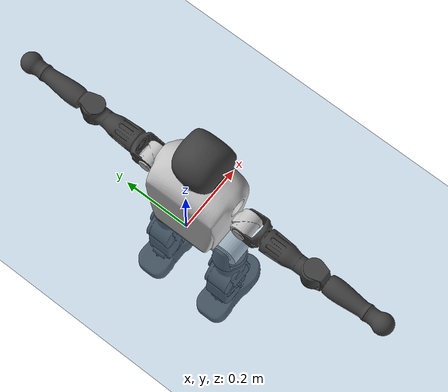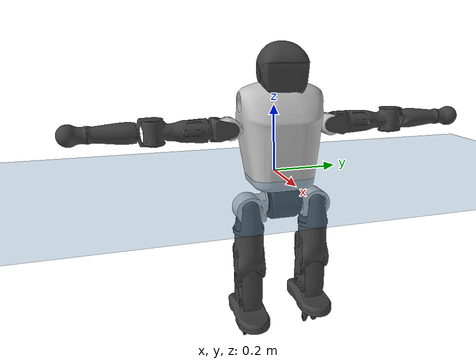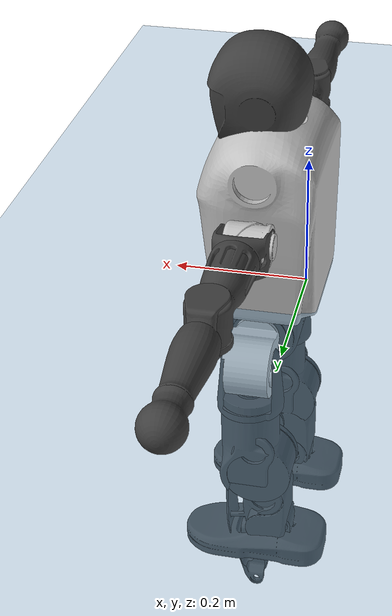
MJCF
<mujoco model="T1">
  <compiler angle="radian" assetdir="assets" balanceinertia="true" inertiafromgeom="false"/>

  <option timestep="0.005" density="1.2" viscosity="2e-05"/>

  <size nkey="1"/>

  <visual>
    <quality shadowsize="8192"/>
    <map shadowclip="0.5"/>
  </visual>

  <default>
    <default class="/">
      <joint armature="0.01" damping="0.01" frictionloss="0.1"/>
      <geom contype="0" conaffinity="0" group="1" solref="-1000 -80"/>
      <site size="0.01 0.005 0.005" group="5"/>
      <general forcelimited="true" biastype="affine" gainprm="25" biasprm="0 -25 -0.6"/>
      <default class="t1">
        <geom rgba="0.25 0.25 0.25 1"/>
        <default class="visual">
          <geom type="mesh" group="2"/>
        </default>
        <default class="collision">
          <geom group="3"/>
        </default>
        <default class="foot">
          <geom size="0.1115 0.05 0.015" type="box" condim="6" group="4" priority="1" solimp="0.015 1 0.015"/>
        </default>
        <default class="reward_collision_sphere">
          <geom group="5" rgba="1 0 0 1"/>
        </default>
      </default>
    </default>
  </default>

  <asset>
    <texture type="skybox" colorspace="auto" name="//unnamed_texture_0" builtin="gradient" rgb1="0.95 0.95 0.95" rgb2="0.95 0.95 0.95" width="100" height="600"/>
    <texture type="2d" colorspace="auto" name="texplane" builtin="checker" rgb1="0.345 0.575 0.748" rgb2="0.345 0.575 0.748" markrgb="1 1 1" width="512" height="512"/>
    <material name="MatPlane" class="/" texture="texplane" texuniform="true" texrepeat="2 2" specular="0.9"/>
    <mesh name="Trunk" class="/" file="Trunk.stl"/>
    <mesh name="H1" class="/" file="H1.stl"/>
    <mesh name="H2" class="/" file="H2.stl"/>
    <mesh name="AL1" class="/" file="AL1.stl"/>
    <mesh name="AL2" class="/" file="AL2.stl"/>
    <mesh name="AL3" class="/" file="AL3.stl"/>
    <mesh name="left_hand_link" class="/" file="left_hand_link.stl"/>
    <mesh name="AR1" class="/" file="AR1.stl"/>
    <mesh name="AR2" class="/" file="AR2.stl"/>
    <mesh name="AR3" class="/" file="AR3.stl"/>
    <mesh name="right_hand_link" class="/" file="right_hand_link.stl"/>
    <mesh name="Waist" class="/" file="Waist.stl"/>
    <mesh name="Hip_Pitch_Left" class="/" file="Hip_Pitch_Left.stl"/>
    <mesh name="Hip_Roll_Left" class="/" file="Hip_Roll_Left.stl"/>
    <mesh name="Hip_Yaw_Left" class="/" file="Hip_Yaw_Left.stl"/>
    <mesh name="Shank_Left" class="/" file="Shank_Left.stl"/>
    <mesh name="Ankle_Cross_Left" class="/" file="Ankle_Cross_Left.stl"/>
    <mesh name="left_foot_link" class="/" file="left_foot_link.stl"/>
    <mesh name="Hip_Pitch_Right" class="/" file="Hip_Pitch_Right.stl"/>
    <mesh name="Hip_Roll_Right" class="/" file="Hip_Roll_Right.stl"/>
    <mesh name="Hip_Yaw_Right" class="/" file="Hip_Yaw_Right.stl"/>
    <mesh name="Shank_Right" class="/" file="Shank_Right.stl"/>
    <mesh name="Ankle_Cross_Right" class="/" file="Ankle_Cross_Right.stl"/>
    <mesh name="right_foot_link" class="/" file="right_foot_link.stl"/>
  </asset>

  <worldbody>
    <geom name="floor" class="/" size="100 100 0.125" type="plane" group="0" material="MatPlane"/>
    <light name="toplight_shadow" class="/" pos="0 0 5" dir="0.0990148 0.0990148 -0.990148" type="directional" ambient="0.04 0.04 0.04" diffuse="0.55 0.55 0.55" specular="0.12 0.12 0.12"/>
    <light name="toplight_fill" class="/" pos="0 0 5" dir="0.0990148 0.0990148 -0.990148" type="directional" castshadow="false" ambient="0.04 0.04 0.04" diffuse="0.3 0.3 0.3" specular="0.08 0.08 0.08"/>
    <body name="trunk" childclass="t1" pos="-0.000454908 -0.000155746 -0.00077222" quat="1 -0.000697136 -0.000279357 -0.000272073">
      <inertial pos="0.0532279 -0.002905 0.0672449" quat="0.999899 0.00887835 -0.0110424 -0.00071826" mass="8.15829" diaginertia="0.0810519 0.0763056 0.00730205"/>
      <joint name="//unnamed_joint_0" type="free" armature="0" damping="0" frictionloss="0"/>
      <geom name="//unnamed_geom_1" class="visual" rgba="0.76 0.76 0.76 1" mesh="Trunk"/>
      <geom name="//unnamed_geom_2" class="collision" size="0.0654064 0.0872085 0.130813" pos="0.0582107 0 0.0788354" type="box"/>
      <geom name="//unnamed_geom_3" class="reward_collision_sphere" size="0.10029" pos="0.0582107 0 0.0656962"/>
      <geom name="//unnamed_geom_4" class="reward_collision_sphere" size="0.0130813" pos="0.0582107 0.0840747 0"/>
      <geom name="//unnamed_geom_5" class="reward_collision_sphere" size="0.0130813" pos="0.0582107 -0.0840747 0"/>
      <geom name="//unnamed_geom_6" class="reward_collision_sphere" size="0.0130813" pos="0.0582107 0.105835 0.118253"/>
      <geom name="//unnamed_geom_7" class="reward_collision_sphere" size="0.0130813" pos="0.0582107 -0.105835 0.118253"/>
      <site name="imu" pos="-0.0188292 0.00970622 0.0113748" size="0.00872085"/>
      <camera name="track" pos="0 -1.97823 0" quat="0.707107 0.707107 0 0" mode="trackcom"/>
      <camera name="ego_camera" pos="0.118362 0 0.275924" quat="-0.5 -0.5 0.5 0.5"/>
      <body name="H1" pos="0.0573964 -0.0014171 0.159379" quat="1 -0.000443857 0.000132973 -0.000529942">
        <inertial pos="0.000535538 -0.00374222 0.0353346" quat="0.766331 -0.0236213 0.00872596 0.641953" mass="0.285668" diaginertia="0.000200037 0.000210573 1.78574e-05"/>
        <joint name="AAHead_yaw" pos="0 0 0" axis="0.00116603 0.00258719 0.999996" range="-1.52868 1.58591" armature="0.00984778" damping="0.0194226" frictionloss="0.0756701"/>
        <geom name="//unnamed_geom_8" class="visual" mesh="H1"/>
        <body name="H2" pos="-0.00111503 0.00246981 0.0383525" quat="1 1.73334e-05 -0.000267132 4.73294e-06">
          <inertial pos="0.00345012 -0.00169408 0.0652772" quat="0.98713 0.109745 -0.0867336 -0.0775099" mass="0.399908" diaginertia="0.00180564 0.00176531 0.0002058"/>
          <joint name="Head_pitch" pos="0 0 0" axis="-0.00784811 -0.999913 0.010644" stiffness="0.000106312" range="-1.22998 0.358233" armature="0.00939077" damping="0.00178518" frictionloss="0.0888044"/>
          <geom name="//unnamed_geom_9" class="visual" mesh="H2"/>
          <geom name="//unnamed_geom_10" class="collision" size="0.0697668" pos="0.00970178 0 0.0722658"/>
          <geom name="//unnamed_geom_11" class="reward_collision_sphere" size="0.0784876" pos="0.0194036 0 0.0656962"/>
        </body>
      </body>
      <body name="AL1" pos="0.0563269 0.106183 0.145395" quat="0.999999 0.000750287 5.00745e-05 -0.000706515">
        <inertial pos="0.00165216 0.0463824 -0.00260553" quat="0.50481 0.499766 -0.506409 0.488826" mass="0.337051" diaginertia="0.00113097 0.00121958 3.64606e-05"/>
        <joint name="Left_Shoulder_Pitch" pos="0 0 0" axis="0.011274 0.999913 -0.00679395" stiffness="0.0140869" range="-3.26575 1.2071" armature="0.00973869" damping="0.0205574" frictionloss="0.0890505"/>
        <geom name="//unnamed_geom_12" class="visual" rgba="0.76 0.76 0.76 1" mesh="AL1"/>
        <body name="AL2" pos="0.00369885 0.044399 0.00282819" quat="0.999998 -0.000553679 -0.000373806 0.00176477">
          <inertial pos="0.0064735 0.0382903 0.000456634" quat="0.480134 0.518421 -0.489723 0.510766" mass="0.0970207" diaginertia="0.000328564 0.000313115 2.0251e-05"/>
          <joint name="Left_Shoulder_Roll" pos="0 0 0" axis="-0.999761 -0.018452 -0.0116945" range="-1.591 1.71527" armature="0.0094844" damping="0.0237893" frictionloss="0.0764194"/>
          <geom name="//unnamed_geom_13" class="visual" mesh="AL2"/>
          <body name="AL3" pos="0.0026636 0.0578104 0.00230291" quat="0.999998 0.00131955 0.000760141 -0.00154201">
            <inertial pos="0.00153182 0.0853186 0.000204148" quat="0.706924 0.707267 0.00442317 -0.00354185" mass="0.654889" diaginertia="0.0105883 0.011773 7.18253e-05"/>
            <joint name="Left_Elbow_Pitch" pos="0 0 0" axis="0.000815451 -0.999991 0.00409135" stiffness="0.0204772" range="-2.31213 2.24907" armature="0.00863777" damping="0.01133" frictionloss="0.0844974"/>
            <geom name="//unnamed_geom_14" class="visual" mesh="AL3"/>
            <geom name="//unnamed_geom_15" class="collision" size="0.0261625 0.0654064" pos="0 0.0494557 0" quat="0.707105 0.707108 0 0" type="cylinder"/>
            <geom name="//unnamed_geom_16" class="reward_collision_sphere" size="0.0313951"/>
            <body name="left_hand_link" pos="0.00147906 0.142047 0.00116588" quat="0.999999 0.000734138 -0.00102029 0.00052179">
              <inertial pos="-0.000690473 0.106528 0.00272585" quat="0.710897 0.703233 0.00904571 -0.00256128" mass="0.226829" diaginertia="0.00754343 0.00809171 2.70779e-05"/>
              <joint name="Left_Elbow_Yaw" pos="0 0 0" axis="0.00381576 -0.00557157 0.999977" range="-2.43445 -0.01912" armature="0.00858668" damping="0.00743782" frictionloss="0.0708253"/>
              <geom name="//unnamed_geom_17" class="visual" mesh="left_hand_link"/>
              <geom name="//unnamed_geom_18" class="collision" size="0.0261625 0.0763074" pos="0 0.128585 0" quat="0.707105 0.707108 0 0" type="cylinder"/>
              <geom name="//unnamed_geom_19" class="reward_collision_sphere" size="0.0436042"/>
              <geom name="//unnamed_geom_20" class="reward_collision_sphere" size="0.030523" pos="0 0.108803 0"/>
              <geom name="//unnamed_geom_21" class="reward_collision_sphere" size="0.030523" pos="0 0.21266 0"/>
            </body>
          </body>
        </body>
      </body>
      <body name="AR1" pos="0.0573227 -0.104892 0.145922" quat="0.999999 -0.000807538 0.00135192 -0.00069836">
        <inertial pos="-0.000847421 -0.0468956 0.00237107" quat="0.50193 0.495964 -0.503158 0.498917" mass="0.353217" diaginertia="0.00115671 0.00116309 3.52056e-05"/>
        <joint name="Right_Shoulder_Pitch" pos="0 0 0" axis="0.00895837 -0.999955 0.00322836" range="-1.28346 3.26152" armature="0.00871165" damping="0" frictionloss="0.089825"/>
        <geom name="//unnamed_geom_22" class="visual" rgba="0.76 0.76 0.76 1" mesh="AR1"/>
        <body name="AR2" pos="0.00262834 -0.0470006 -0.000173764" quat="1 -0.000660393 -0.000322529 -0.00050152">
          <inertial pos="0.0024112 -0.0350756 -5.1804e-05" quat="0.51055 0.484156 -0.516559 0.487953" mass="0.11212" diaginertia="0.000364959 0.000353655 2.15229e-05"/>
          <joint name="Right_Shoulder_Roll" pos="0 0 0" axis="-0.999985 -0.00544335 9.67331e-05" range="-1.70842 1.62573" armature="0.00853223" damping="0.0201143" frictionloss="0.0975082"/>
          <geom name="//unnamed_geom_23" class="visual" mesh="AR2"/>
          <body name="AR3" pos="-0.00165948 -0.063697 -0.00187826" quat="1 -0.000203266 -5.71758e-05 0.000761667">
            <inertial pos="2.45959e-06 -0.0871117 -0.00181869" quat="0.717692 0.696171 0.0160502 0.0025043" mass="0.656413" diaginertia="0.0107412 0.012107 7.2856e-05"/>
            <joint name="Right_Elbow_Pitch" pos="0 0 0" axis="5.84844e-05 1 -0.000243297" range="-2.26466 2.27647" armature="0.00766864" damping="0.0106847" frictionloss="0.0741888"/>
            <geom name="//unnamed_geom_24" class="visual" mesh="AR3"/>
            <geom name="//unnamed_geom_25" class="collision" size="0.0261625 0.0654064" pos="0 -0.0494557 0" quat="0.707105 0.707108 0 0" type="cylinder"/>
            <geom name="//unnamed_geom_26" class="reward_collision_sphere" size="0.0313951"/>
            <body name="right_hand_link" pos="0.00188512 -0.147606 0.00266599" quat="1 -0.000569237 -0.000111346 -0.00063142">
              <inertial pos="0.00203867 -0.107938 -0.00211457" quat="0.713972 0.700171 -0.00187621 0.00068994" mass="0.232644" diaginertia="0.00725184 0.00796898 2.74761e-05"/>
              <joint name="Right_Elbow_Yaw" pos="0 0 0" axis="-0.0114491 0.000260515 0.999934" range="0.0160898 2.48572" armature="0.00697502" damping="0.00550831" frictionloss="0.0890133"/>
              <geom name="//unnamed_geom_27" class="visual" mesh="right_hand_link"/>
              <geom name="//unnamed_geom_28" class="collision" size="0.0261625 0.0763074" pos="0 -0.128585 0" quat="0.707105 0.707108 0 0" type="cylinder"/>
              <geom name="//unnamed_geom_29" class="reward_collision_sphere" size="0.0436042"/>
              <geom name="//unnamed_geom_30" class="reward_collision_sphere" size="0.030523" pos="0 -0.108803 0"/>
              <geom name="//unnamed_geom_31" class="reward_collision_sphere" size="0.030523" pos="0 -0.21266 0"/>
            </body>
          </body>
        </body>
      </body>
      <body name="Waist" pos="0.0620769 0.00314778 -0.0749684" quat="1 0.000255942 0.000628775 0.000208369">
        <inertial pos="-0.000912082 -0.00137553 0.00366851" quat="0.982957 -0.00307482 -0.183427 0.0118971" mass="1.7415" diaginertia="0.00464591 0.00525019 0.000602835"/>
        <joint name="Waist" pos="0 0 0" axis="0.0037321 -0.00951872 0.999948" range="-1.64793 1.61044" armature="0.00930282" damping="0.0242215" frictionloss="0.0806259"/>
        <geom name="//unnamed_geom_32" class="visual" mesh="Waist"/>
        <body name="Hip_Pitch_Left" pos="0.00283713 0.103023 0.00150748" quat="0.999999 -0.00138148 -0.000543463 -0.000186085">
          <inertial pos="0.000235711 -0.0108105 -0.0115373" quat="0.974858 0.222437 0.0121008 0.0051741" mass="0.650104" diaginertia="0.00152619 0.00129538 0.000150238"/>
          <joint name="Left_Hip_Pitch" pos="0 0 0" axis="0.0039119 0.999761 -0.0214868" stiffness="0.00205646" range="-1.775 1.58458" armature="0.00888038" damping="0.0257619" frictionloss="0.0877478"/>
          <geom name="//unnamed_geom_33" class="visual" rgba="0.76 0.76 0.76 1" mesh="Hip_Pitch_Left"/>
          <body name="Hip_Roll_Left" pos="0.00177006 -0.000221862 -0.0136724" quat="1 0.000883052 -0.000170428 -0.000403641">
            <inertial pos="0.00399844 0.000942519 -0.0384565" quat="0.706392 -0.00444475 -0.00453216 0.707793" mass="0.254358" diaginertia="0.00148053 0.00146862 6.41027e-05"/>
            <joint name="Left_Hip_Roll" pos="0 0 0" axis="-0.999988 -0.00123955 -0.00473065" range="-1.51185 0.153376" armature="0.00861262" damping="0.0042585" frictionloss="0.0837351"/>
            <geom name="//unnamed_geom_34" class="visual" mesh="Hip_Roll_Left"/>
            <geom name="//unnamed_geom_35" class="reward_collision_sphere" size="0.0479647"/>
            <body name="Hip_Yaw_Left" pos="-0.00235419 0.000675553 -0.0507474" quat="1 9.46731e-05 -2.96694e-05 -0.000247603">
              <inertial pos="-0.00486705 -0.00125808 -0.0605889" quat="0.685658 -0.0286307 -0.0241998 0.726958" mass="1.40572" diaginertia="0.0227021 0.0251588 0.000323672"/>
              <joint name="Left_Hip_Yaw" pos="0 0 0" axis="-0.00510982 -0.00898732 -0.999947" stiffness="0.0118053" range="-0.998745 1.06162" armature="0.00871529" damping="0" frictionloss="0.0872168"/>
              <geom name="//unnamed_geom_36" class="visual" mesh="Hip_Yaw_Left"/>
              <geom name="//unnamed_geom_37" class="collision" size="0.0436042 0.0697668" type="cylinder"/>
              <body name="Shank_Left" pos="-0.0121157 -0.00174793 -0.088322" quat="1 0.000687875 -0.000137472 -0.000173781">
                <inertial pos="-0.00579359 0.00256637 -0.0798485" quat="0.997364 0.00115506 -0.0241506 0.0684206" mass="1.15093" diaginertia="0.0285748 0.0321518 0.000219613"/>
                <joint name="Left_Knee_Pitch" pos="0 0 0" axis="4.28866e-05 1 0.000117228" range="0.0431275 2.34878" armature="0.00985071" damping="0.00501576" frictionloss="0.0804299"/>
                <geom name="//unnamed_geom_38" class="visual" mesh="Shank_Left"/>
                <geom name="//unnamed_geom_39" class="collision" size="0.0436042 0.0654064" pos="0 0 -0.0788354" type="cylinder"/>
                <geom name="//unnamed_geom_40" class="reward_collision_sphere" size="0.0566855"/>
                <body name="Ankle_Cross_Left" pos="-0.0027224 -0.000717915 -0.18214" quat="1 -0.000144289 9.48838e-05 -0.000451896">
                  <inertial pos="-0.0053288 0.00139586 -0.00130586" quat="0.434389 0.549181 0.559561 0.443393" mass="0.0483746" diaginertia="2.37033e-05 2.35195e-05 1.33049e-06"/>
                  <joint name="Left_Ankle_Pitch" pos="0 0 0" axis="0.00712105 0.999974 0.000883477" range="-0.785715 0.371835" armature="0.00811562" damping="0.026539" frictionloss="0.0790405"/>
                  <geom name="//unnamed_geom_41" class="visual" mesh="Ankle_Cross_Left"/>
                  <body name="left_foot_link" pos="-0.00226965 -0.000760645 -0.00457433" quat="0.999999 -0.00106051 0.000327007 0.000366726">
                    <inertial pos="-0.00250128 0.00268365 -0.00347449" quat="-0.000415558 0.621023 -0.000117097 0.783792" mass="0.445512" diaginertia="0.00233485 0.00226318 0.000277244"/>
                    <joint name="Left_Ankle_Roll" pos="0 0 0" axis="-0.999898 0.0074467 0.0121733" stiffness="0.00716273" range="-0.453555 0.397438" armature="0.00861065" damping="0" frictionloss="0.0946372"/>
                    <geom name="//unnamed_geom_42" class="visual" mesh="left_foot_link"/>
                    <geom name="left_foot" class="foot" size="0.111831 0.0332058 0.0139507" pos="0.00970178 0 -0.00985443"/>
                    <geom name="//unnamed_geom_44" class="reward_collision_sphere" size="0.0453484" pos="0.00970178 0 -0.00985443"/>
                    <geom name="//unnamed_geom_45" class="reward_collision_sphere" size="0.0261625" pos="0.0921669 -0.0227496 -0.00985443"/>
                    <geom name="//unnamed_geom_46" class="reward_collision_sphere" size="0.0261625" pos="-0.0679125 -0.0227496 -0.00985443"/>
                    <site name="left_foot" class="foot" pos="0.00970178 0 -0.00985443" size="0.00872085"/>
                  </body>
                </body>
              </body>
            </body>
          </body>
        </body>
        <body name="Hip_Pitch_Right" pos="-0.000707749 -0.102424 -0.00398839" quat="1 0.000250181 0.000693043 9.28514e-05">
          <inertial pos="0.000556048 0.0103709 -0.014611" quat="0.97411 -0.225309 0.0184582 0.00218752" mass="0.698126" diaginertia="0.00160663 0.00143371 0.000156523"/>
          <joint name="Right_Hip_Pitch" pos="0 0 0" axis="0.000412296 -0.999991 0.00431693" range="-1.55369 1.81456" armature="0.00819189" damping="0" frictionloss="0.0928309"/>
          <geom name="//unnamed_geom_47" class="visual" rgba="0.76 0.76 0.76 1" mesh="Hip_Pitch_Right"/>
          <body name="Hip_Roll_Right" pos="-0.000471984 -0.00145143 -0.0132238" quat="0.999998 -0.00175654 -7.98531e-05 -0.000954102">
            <inertial pos="-0.00236722 0.00182092 -0.0355365" quat="0.709064 -0.00745469 -0.00888381 0.705049" mass="0.255816" diaginertia="0.00150012 0.00148905 6.31073e-05"/>
            <joint name="Right_Hip_Roll" pos="0 0 0" axis="-0.999992 -0.000121202 -0.00390214" range="-0.189806 1.5568" armature="0.00916147" damping="0.0179771" frictionloss="0.0866841"/>
            <geom name="//unnamed_geom_48" class="visual" mesh="Hip_Roll_Right"/>
            <geom name="//unnamed_geom_49" class="reward_collision_sphere" size="0.0479647"/>
            <body name="Hip_Yaw_Right" pos="0.00132463 0.000749911 -0.0574341" quat="0.999999 5.74577e-05 0.00100627 0.000186608">
              <inertial pos="-0.005593 -0.00321873 -0.0566451" quat="0.715629 -0.0299375 -0.0330554 0.697055" mass="1.44413" diaginertia="0.0209422 0.0221256 0.00031575"/>
              <joint name="Right_Hip_Yaw" pos="0 0 0" axis="-0.0104181 0.0122748 -0.99987" stiffness="0.0166918" range="-0.970841 1.08332" armature="0.00850738" damping="0.0184654" frictionloss="0.0975993"/>
              <geom name="//unnamed_geom_50" class="visual" mesh="Hip_Yaw_Right"/>
              <geom name="//unnamed_geom_51" class="collision" size="0.0436042 0.0697668" type="cylinder"/>
              <body name="Shank_Right" pos="-0.0109441 0.000276284 -0.0910542" quat="0.999999 0.000758651 -0.000882692 -0.000333947">
                <inertial pos="-0.00746459 0.00104399 -0.0832081" quat="0.999279 0.00110295 -0.0225944 -0.0305062" mass="1.10023" diaginertia="0.0300176 0.0329342 0.000235786"/>
                <joint name="Right_Knee_Pitch" pos="0 0 0" axis="-0.0162036 -0.999862 0.00366709" range="-2.39552 0.0382008" armature="0.00929895" damping="0.0155352" frictionloss="0.0963495"/>
                <geom name="//unnamed_geom_52" class="visual" mesh="Shank_Right"/>
                <geom name="//unnamed_geom_53" class="collision" size="0.0436042 0.0654064" pos="0 0 -0.0788354" type="cylinder"/>
                <geom name="//unnamed_geom_54" class="reward_collision_sphere" size="0.0566855"/>
                <body name="Ankle_Cross_Right" pos="0.00181331 -0.000566505 -0.184167" quat="1 -0.0005524 -0.000577659 0.000436163">
                  <inertial pos="-0.00393903 -0.00125023 -0.00397573" quat="0.438956 0.558744 0.545141 0.444909" mass="0.0496224" diaginertia="2.48414e-05 2.43664e-05 1.35518e-06"/>
                  <joint name="Right_Ankle_Pitch" pos="0 0 0" axis="-0.00602832 -0.999785 -0.0198172" stiffness="0.0193226" range="-0.335774 0.870411" armature="0.00836073" damping="0.00655061" frictionloss="0.104302"/>
                  <geom name="//unnamed_geom_55" class="visual" mesh="Ankle_Cross_Right"/>
                  <body name="right_foot_link" pos="0.000123335 -0.00248726 -0.00783133" quat="1 0.000366131 -8.943e-05 -0.000565135">
                    <inertial pos="0.00253785 -0.00204734 -0.00433779" quat="0.00683514 0.620536 -0.0081617 0.784105" mass="0.459308" diaginertia="0.00237509 0.0023736 0.000268668"/>
                    <joint name="Right_Ankle_Roll" pos="0 0 0" axis="-0.999991 -0.00314556 0.00291288" range="-0.520751 0.476344" armature="0.00888428" damping="0.0116035" frictionloss="0.0931362"/>
                    <geom name="//unnamed_geom_56" class="visual" mesh="right_foot_link"/>
                    <geom name="right_foot" class="foot" size="0.114575 0.0373856 0.0125492" pos="0.00970178 0 -0.00985443"/>
                    <geom name="//unnamed_geom_58" class="reward_collision_sphere" size="0.0348834"/>
                    <geom name="//unnamed_geom_59" class="reward_collision_sphere" size="0.0261625" pos="0.00970178 0 -0.00985443"/>
                    <geom name="//unnamed_geom_60" class="reward_collision_sphere" size="0.0261625" pos="0.0921669 0.0227496 -0.00985443"/>
                    <geom name="//unnamed_geom_61" class="reward_collision_sphere" size="0.0261625" pos="-0.0679125 0.0227496 -0.00985443"/>
                    <site name="right_foot" class="foot" pos="0.00970178 0 -0.00985443" size="0.00872085"/>
                  </body>
                </body>
              </body>
            </body>
          </body>
        </body>
      </body>
    </body>
  </worldbody>

  <contact>
    <pair class="/" geom1="floor" geom2="left_foot" name="//unnamed_contact_0"/>
    <pair class="/" geom1="floor" geom2="right_foot" name="//unnamed_contact_1"/>
  </contact>

  <actuator>
    <general name="AAHead_yaw" class="/" joint="AAHead_yaw" forcerange="-5.68337 5.68337" gainprm="21.813" biasprm="0 -21.813 -0.564967"/>
    <general name="Head_pitch" class="/" joint="Head_pitch" forcerange="-6.52162 6.52162" gainprm="21.813" biasprm="0 -21.813 -0.564967"/>
    <general name="Left_Shoulder_Pitch" class="/" joint="Left_Shoulder_Pitch" forcerange="-16.077 16.077" gainprm="21.813" biasprm="0 -21.813 -0.564967"/>
    <general name="Left_Shoulder_Roll" class="/" joint="Left_Shoulder_Roll" forcerange="-15.97 15.97" gainprm="21.813" biasprm="0 -21.813 -0.564967"/>
    <general name="Left_Elbow_Pitch" class="/" joint="Left_Elbow_Pitch" forcerange="-14.9682 14.9682" gainprm="21.813" biasprm="0 -21.813 -0.564967"/>
    <general name="Left_Elbow_Yaw" class="/" joint="Left_Elbow_Yaw" forcerange="-14.4527 14.4527" gainprm="21.813" biasprm="0 -21.813 -0.564967"/>
    <general name="Right_Shoulder_Pitch" class="/" joint="Right_Shoulder_Pitch" forcerange="-15.4916 15.4916" gainprm="21.813" biasprm="0 -21.813 -0.564967"/>
    <general name="Right_Shoulder_Roll" class="/" joint="Right_Shoulder_Roll" forcerange="-15.9712 15.9712" gainprm="21.813" biasprm="0 -21.813 -0.564967"/>
    <general name="Right_Elbow_Pitch" class="/" joint="Right_Elbow_Pitch" forcerange="-14.2685 14.2685" gainprm="21.813" biasprm="0 -21.813 -0.564967"/>
    <general name="Right_Elbow_Yaw" class="/" joint="Right_Elbow_Yaw" forcerange="-14.7322 14.7322" gainprm="21.813" biasprm="0 -21.813 -0.564967"/>
    <general name="Waist" class="/" joint="Waist" forcerange="-28.2062 28.2062" gainprm="21.813" biasprm="0 -21.813 -0.564967"/>
    <general name="Left_Hip_Pitch" class="/" joint="Left_Hip_Pitch" forcerange="-44.9924 44.9924" gainprm="21.813" biasprm="0 -21.813 -0.564967"/>
    <general name="Left_Hip_Roll" class="/" joint="Left_Hip_Roll" forcerange="-28.7429 28.7429" gainprm="21.813" biasprm="0 -21.813 -0.564967"/>
    <general name="Left_Hip_Yaw" class="/" joint="Left_Hip_Yaw" forcerange="-28.8769 28.8769" gainprm="21.813" biasprm="0 -21.813 -0.564967"/>
    <general name="Left_Knee_Pitch" class="/" joint="Left_Knee_Pitch" forcerange="-48.6095 48.6095" gainprm="21.813" biasprm="0 -21.813 -0.564967"/>
    <general name="Left_Ankle_Pitch" class="/" joint="Left_Ankle_Pitch" forcerange="-18.9705 18.9705" gainprm="21.813" biasprm="0 -21.813 -0.564967"/>
    <general name="Left_Ankle_Roll" class="/" joint="Left_Ankle_Roll" forcerange="-13.4649 13.4649" gainprm="21.813" biasprm="0 -21.813 -0.564967"/>
    <general name="Right_Hip_Pitch" class="/" joint="Right_Hip_Pitch" forcerange="-34.9611 34.9611" gainprm="21.813" biasprm="0 -21.813 -0.564967"/>
    <general name="Right_Hip_Roll" class="/" joint="Right_Hip_Roll" forcerange="-28.7127 28.7127" gainprm="21.813" biasprm="0 -21.813 -0.564967"/>
    <general name="Right_Hip_Yaw" class="/" joint="Right_Hip_Yaw" forcerange="-28.8063 28.8063" gainprm="21.813" biasprm="0 -21.813 -0.564967"/>
    <general name="Right_Knee_Pitch" class="/" joint="Right_Knee_Pitch" forcerange="-54.0194 54.0194" gainprm="21.813" biasprm="0 -21.813 -0.564967"/>
    <general name="Right_Ankle_Pitch" class="/" joint="Right_Ankle_Pitch" forcerange="-16.2345 16.2345" gainprm="21.813" biasprm="0 -21.813 -0.564967"/>
    <general name="Right_Ankle_Roll" class="/" joint="Right_Ankle_Roll" forcerange="-14.5584 14.5584" gainprm="21.813" biasprm="0 -21.813 -0.564967"/>
  </actuator>

  <sensor>
    <gyro site="imu" name="imu_angular_velocity"/>
    <velocimeter site="imu" name="imu_linear_velocity"/>
    <framelinvel objtype="site" objname="left_foot" name="left_foot_global_linear_velocity"/>
    <framelinvel objtype="site" objname="right_foot" name="right_foot_global_linear_velocity"/>
  </sensor>

  <keyframe>
    <key name="home" qpos="0 0 0.6385 1 0 0 0 0 0 0 1.4 0 -0.4 0 -1.4 0 0.4 0 -0.4 0 0 0.8 -0.4 0 0.4 0 0 -0.8 0.4 0"/>
  </keyframe>
</mujoco>
